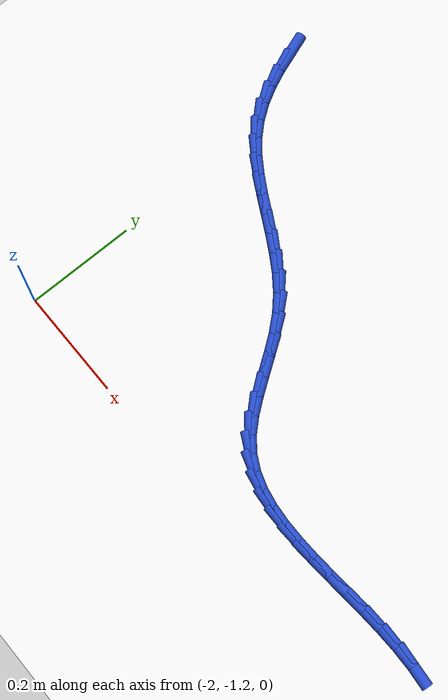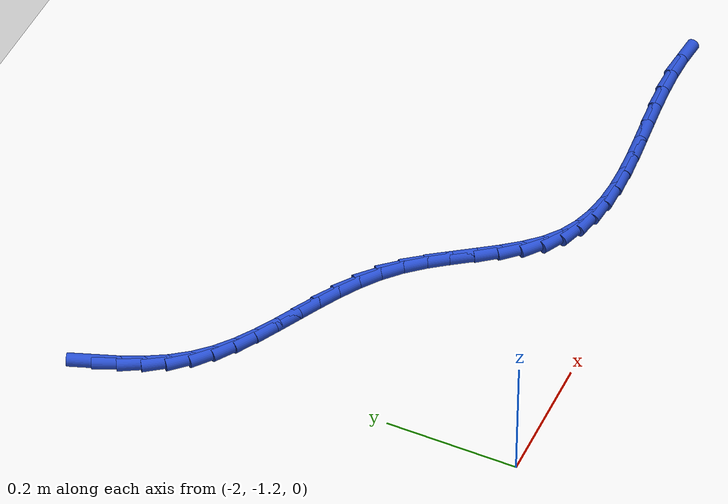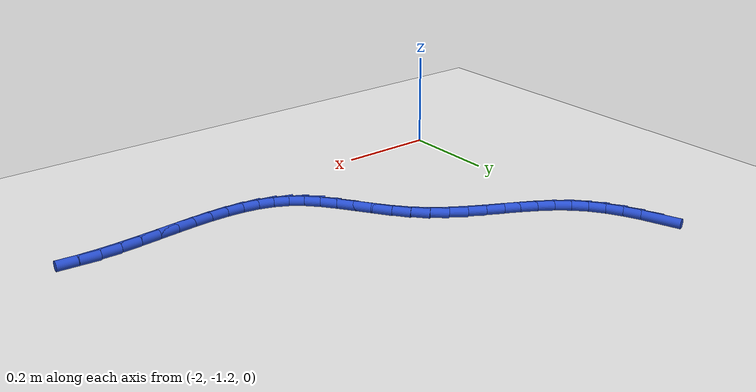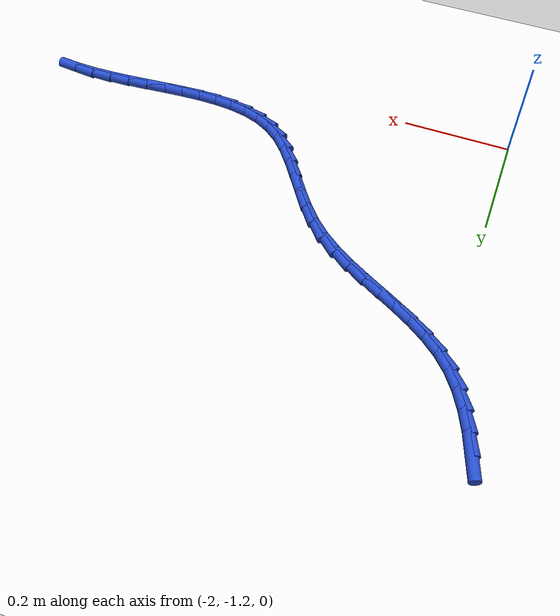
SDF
<sdf version="1.6">
 <world name="default">
  <model name="ground_plane">
   <static>1</static>
   <link name="link">
    <collision name="collision">
     <geometry><plane><normal>0 0 1</normal><size>100 100</size></plane></geometry>
     <surface><friction><ode><mu>100</mu><mu2>50</mu2></ode></friction></surface>
    </collision>
    <visual name="visual">
     <cast_shadows>0</cast_shadows>
     <geometry><plane><normal>0 0 1</normal><size>100 100</size></plane></geometry>
     <material>
      <script><uri>file://media/materials/scripts/gazebo.material</uri><name>Gazebo/WhiteGlow</name></script>
     </material>
    </visual>
   </link>
  </model>
  <model name="line">
   <link name="link_116">
    <pose>-2.071157767570418 -0.5710915443432558 0.01 0 1.57 -1.2275295567298745</pose>
    <collision name="collision">
     <geometry><cylinder><radius>0.01</radius><length>0.08</length></cylinder></geometry>
    </collision>
    <visual name="visual">
     <material>
      <script><name>Gazebo/Blue</name><uri>file://media/materials/scripts/gazebo.material</uri></script>
     </material>
     <geometry><cylinder><radius>0.01</radius><length>0.08</length></cylinder></geometry>
    </visual>
   </link>
   <link name="link_117">
    <pose>-2.058943376402617 -0.6052656378440056 0.01 0 1.57 -1.1555274619313</pose>
    <collision name="collision">
     <geometry><cylinder><radius>0.01</radius><length>0.08</length></cylinder></geometry>
    </collision>
    <visual name="visual">
     <material>
      <script><name>Gazebo/Blue</name><uri>file://media/materials/scripts/gazebo.material</uri></script>
     </material>
     <geometry><cylinder><radius>0.01</radius><length>0.08</length></cylinder></geometry>
    </visual>
   </link>
   <link name="link_118">
    <pose>-2.0446286189184812 -0.6377320446653065 0.01 0 1.57 -1.062980013516482</pose>
    <collision name="collision">
     <geometry><cylinder><radius>0.01</radius><length>0.08</length></cylinder></geometry>
    </collision>
    <visual name="visual">
     <material>
      <script><name>Gazebo/Blue</name><uri>file://media/materials/scripts/gazebo.material</uri></script>
     </material>
     <geometry><cylinder><radius>0.01</radius><length>0.08</length></cylinder></geometry>
    </visual>
   </link>
   <link name="link_119">
    <pose>-2.027783751425885 -0.6680016047810033 0.01 0 1.57 -0.9480981614589764</pose>
    <collision name="collision">
     <geometry><cylinder><radius>0.01</radius><length>0.08</length></cylinder></geometry>
    </collision>
    <visual name="visual">
     <material>
      <script><name>Gazebo/Blue</name><uri>file://media/materials/scripts/gazebo.material</uri></script>
     </material>
     <geometry><cylinder><radius>0.01</radius><length>0.08</length></cylinder></geometry>
    </visual>
   </link>
   <link name="link_120">
    <pose>-2.0079790302327 -0.6955851581649403 0.01 0 1.57 -0.8120194246019729</pose>
    <collision name="collision">
     <geometry><cylinder><radius>0.01</radius><length>0.08</length></cylinder></geometry>
    </collision>
    <visual name="visual">
     <material>
      <script><name>Gazebo/Blue</name><uri>file://media/materials/scripts/gazebo.material</uri></script>
     </material>
     <geometry><cylinder><radius>0.01</radius><length>0.08</length></cylinder></geometry>
    </visual>
   </link>
   <link name="link_121">
    <pose>-1.9848102376103818 -0.7200215605813411 0.01 0 1.57 -0.6823413383634463</pose>
    <collision name="collision">
     <geometry><cylinder><radius>0.01</radius><length>0.08</length></cylinder></geometry>
    </collision>
    <visual name="visual">
     <material>
      <script><name>Gazebo/Blue</name><uri>file://media/materials/scripts/gazebo.material</uri></script>
     </material>
     <geometry><cylinder><radius>0.01</radius><length>0.08</length></cylinder></geometry>
    </visual>
   </link>
   <link name="link_122">
    <pose>-1.9584277812407578 -0.7414583918955368 0.01 0 1.57 -0.5856528117831099</pose>
    <collision name="collision">
     <geometry><cylinder><radius>0.01</radius><length>0.08</length></cylinder></geometry>
    </collision>
    <visual name="visual">
     <material>
      <script><name>Gazebo/Blue</name><uri>file://media/materials/scripts/gazebo.material</uri></script>
     </material>
     <geometry><cylinder><radius>0.01</radius><length>0.08</length></cylinder></geometry>
    </visual>
   </link>
   <link name="link_123">
    <pose>-1.9295192325662616 -0.7606327911982484 0.01 0 1.57 -0.5219906045893203</pose>
    <collision name="collision">
     <geometry><cylinder><radius>0.01</radius><length>0.08</length></cylinder></geometry>
    </collision>
    <visual name="visual">
     <material>
      <script><name>Gazebo/Blue</name><uri>file://media/materials/scripts/gazebo.material</uri></script>
     </material>
     <geometry><cylinder><radius>0.01</radius><length>0.08</length></cylinder></geometry>
    </visual>
   </link>
   <link name="link_124">
    <pose>-1.8987941955425651 -0.7783060791657618 0.01 0 1.57 -0.4888921253878124</pose>
    <collision name="collision">
     <geometry><cylinder><radius>0.01</radius><length>0.08</length></cylinder></geometry>
    </collision>
    <visual name="visual">
     <material>
      <script><name>Gazebo/Blue</name><uri>file://media/materials/scripts/gazebo.material</uri></script>
     </material>
     <geometry><cylinder><radius>0.01</radius><length>0.08</length></cylinder></geometry>
    </visual>
   </link>
   <link name="link_125">
    <pose>-1.8669622741253422 -0.7952395764743625 0.01 0 1.57 -0.4842905669722895</pose>
    <collision name="collision">
     <geometry><cylinder><radius>0.01</radius><length>0.08</length></cylinder></geometry>
    </collision>
    <visual name="visual">
     <material>
      <script><name>Gazebo/Blue</name><uri>file://media/materials/scripts/gazebo.material</uri></script>
     </material>
     <geometry><cylinder><radius>0.01</radius><length>0.08</length></cylinder></geometry>
    </visual>
   </link>
   <link name="link_126">
    <pose>-1.8347330722702657 -0.8121946038003359 0.01 0 1.57 -0.5072488217176713</pose>
    <collision name="collision">
     <geometry><cylinder><radius>0.01</radius><length>0.08</length></cylinder></geometry>
    </collision>
    <visual name="visual">
     <material>
      <script><name>Gazebo/Blue</name><uri>file://media/materials/scripts/gazebo.material</uri></script>
     </material>
     <geometry><cylinder><radius>0.01</radius><length>0.08</length></cylinder></geometry>
    </visual>
   </link>
   <link name="link_127">
    <pose>-1.802816193933008 -0.8299324818199671 0.01 0 1.57 -0.5579637555865509</pose>
    <collision name="collision">
     <geometry><cylinder><radius>0.01</radius><length>0.08</length></cylinder></geometry>
    </collision>
    <visual name="visual">
     <material>
      <script><name>Gazebo/Blue</name><uri>file://media/materials/scripts/gazebo.material</uri></script>
     </material>
     <geometry><cylinder><radius>0.01</radius><length>0.08</length></cylinder></geometry>
    </visual>
   </link>
   <link name="link_128">
    <pose>-1.7719212430692415 -0.8492145312095418 0.01 0 1.57 -0.6372167917871737</pose>
    <collision name="collision">
     <geometry><cylinder><radius>0.01</radius><length>0.08</length></cylinder></geometry>
    </collision>
    <visual name="visual">
     <material>
      <script><name>Gazebo/Blue</name><uri>file://media/materials/scripts/gazebo.material</uri></script>
     </material>
     <geometry><cylinder><radius>0.01</radius><length>0.08</length></cylinder></geometry>
    </visual>
   </link>
   <link name="link_129">
    <pose>-1.742757823634639 -0.8708020726453453 0.01 0 1.57 -0.7450217796752965</pose>
    <collision name="collision">
     <geometry><cylinder><radius>0.01</radius><length>0.08</length></cylinder></geometry>
    </collision>
    <visual name="visual">
     <material>
      <script><name>Gazebo/Blue</name><uri>file://media/materials/scripts/gazebo.material</uri></script>
     </material>
     <geometry><cylinder><radius>0.01</radius><length>0.08</length></cylinder></geometry>
    </visual>
   </link>
   <link name="link_130">
    <pose>-1.716032332472969 -0.8954520790270347 0.01 0 1.57 -0.8580926453212601</pose>
    <collision name="collision">
     <geometry><cylinder><radius>0.01</radius><length>0.08</length></cylinder></geometry>
    </collision>
    <visual name="visual">
     <material>
      <script><name>Gazebo/Blue</name><uri>file://media/materials/scripts/gazebo.material</uri></script>
     </material>
     <geometry><cylinder><radius>0.01</radius><length>0.08</length></cylinder></geometry>
    </visual>
   </link>
   <link name="link_131">
    <pose>-1.6919799575131067 -0.9232827207527959 0.01 0 1.57 -0.9328873808417645</pose>
    <collision name="collision">
     <geometry><cylinder><radius>0.01</radius><length>0.08</length></cylinder></geometry>
    </collision>
    <visual name="visual">
     <material>
      <script><name>Gazebo/Blue</name><uri>file://media/materials/scripts/gazebo.material</uri></script>
     </material>
     <geometry><cylinder><radius>0.01</radius><length>0.08</length></cylinder></geometry>
    </visual>
   </link>
   <link name="link_132">
    <pose>-1.669872200617863 -0.95310573056614 0.01 0 1.57 -0.9671038197603524</pose>
    <collision name="collision">
     <geometry><cylinder><radius>0.01</radius><length>0.08</length></cylinder></geometry>
    </collision>
    <visual name="visual">
     <material>
      <script><name>Gazebo/Blue</name><uri>file://media/materials/scripts/gazebo.material</uri></script>
     </material>
     <geometry><cylinder><radius>0.01</radius><length>0.08</length></cylinder></geometry>
    </visual>
   </link>
   <link name="link_133">
    <pose>-1.6488627547085213 -0.9835731314848793 0.01 0 1.57 -0.961813903434438</pose>
    <collision name="collision">
     <geometry><cylinder><radius>0.01</radius><length>0.08</length></cylinder></geometry>
    </collision>
    <visual name="visual">
     <material>
      <script><name>Gazebo/Blue</name><uri>file://media/materials/scripts/gazebo.material</uri></script>
     </material>
     <geometry><cylinder><radius>0.01</radius><length>0.08</length></cylinder></geometry>
    </visual>
   </link>
   <link name="link_134">
    <pose>-1.628105312706362 -1.0133369465268243 0.01 0 1.57 -0.9143161352121585</pose>
    <collision name="collision">
     <geometry><cylinder><radius>0.01</radius><length>0.08</length></cylinder></geometry>
    </collision>
    <visual name="visual">
     <material>
      <script><name>Gazebo/Blue</name><uri>file://media/materials/scripts/gazebo.material</uri></script>
     </material>
     <geometry><cylinder><radius>0.01</radius><length>0.08</length></cylinder></geometry>
    </visual>
   </link>
   <link name="link_135">
    <pose>-1.6067535675326678 -1.0410491987097865 0.01 0 1.57 -0.8176628301317209</pose>
    <collision name="collision">
     <geometry><cylinder><radius>0.01</radius><length>0.08</length></cylinder></geometry>
    </collision>
    <visual name="visual">
     <material>
      <script><name>Gazebo/Blue</name><uri>file://media/materials/scripts/gazebo.material</uri></script>
     </material>
     <geometry><cylinder><radius>0.01</radius><length>0.08</length></cylinder></geometry>
    </visual>
   </link>
   <link name="link_136">
    <pose>-1.58396121210872 -1.0653619110515777 0.01 0 1.57 -0.6635015951906371</pose>
    <collision name="collision">
     <geometry><cylinder><radius>0.01</radius><length>0.08</length></cylinder></geometry>
    </collision>
    <visual name="visual">
     <material>
      <script><name>Gazebo/Blue</name><uri>file://media/materials/scripts/gazebo.material</uri></script>
     </material>
     <geometry><cylinder><radius>0.01</radius><length>0.08</length></cylinder></geometry>
    </visual>
   </link>
   <link name="link_137">
    <pose>-1.5588974438941055 -1.0849550348194998 0.01 0 1.57 -0.4807980690416712</pose>
    <collision name="collision">
     <geometry><cylinder><radius>0.01</radius><length>0.08</length></cylinder></geometry>
    </collision>
    <visual name="visual">
     <material>
      <script><name>Gazebo/Blue</name><uri>file://media/materials/scripts/gazebo.material</uri></script>
     </material>
     <geometry><cylinder><radius>0.01</radius><length>0.08</length></cylinder></geometry>
    </visual>
   </link>
   <link name="link_138">
    <pose>-1.531221624605635 -1.0993914517750594 0.01 0 1.57 -0.3177806625377076</pose>
    <collision name="collision">
     <geometry><cylinder><radius>0.01</radius><length>0.08</length></cylinder></geometry>
    </collision>
    <visual name="visual">
     <material>
      <script><name>Gazebo/Blue</name><uri>file://media/materials/scripts/gazebo.material</uri></script>
     </material>
     <geometry><cylinder><radius>0.01</radius><length>0.08</length></cylinder></geometry>
    </visual>
   </link>
   <link name="link_139">
    <pose>-1.5011714528628208 -1.1092757991317146 0.01 0 1.57 -0.18438915001687667</pose>
    <collision name="collision">
     <geometry><cylinder><radius>0.01</radius><length>0.08</length></cylinder></geometry>
    </collision>
    <visual name="visual">
     <material>
      <script><name>Gazebo/Blue</name><uri>file://media/materials/scripts/gazebo.material</uri></script>
     </material>
     <geometry><cylinder><radius>0.01</radius><length>0.08</length></cylinder></geometry>
    </visual>
   </link>
   <link name="link_140">
    <pose>-1.46901791775108 -1.11527268005736 0.01 0 1.57 -0.08144203949746116</pose>
    <collision name="collision">
     <geometry><cylinder><radius>0.01</radius><length>0.08</length></cylinder></geometry>
    </collision>
    <visual name="visual">
     <material>
      <script><name>Gazebo/Blue</name><uri>file://media/materials/scripts/gazebo.material</uri></script>
     </material>
     <geometry><cylinder><radius>0.01</radius><length>0.08</length></cylinder></geometry>
    </visual>
   </link>
   <link name="link_141">
    <pose>-1.4350320083558292 -1.1180466977198875 0.01 0 1.57 -0.00606951725386699</pose>
    <collision name="collision">
     <geometry><cylinder><radius>0.01</radius><length>0.08</length></cylinder></geometry>
    </collision>
    <visual name="visual">
     <material>
      <script><name>Gazebo/Blue</name><uri>file://media/materials/scripts/gazebo.material</uri></script>
     </material>
     <geometry><cylinder><radius>0.01</radius><length>0.08</length></cylinder></geometry>
    </visual>
   </link>
   <link name="link_142">
    <pose>-1.3994847137624848 -1.1182624552871905 0.01 0 1.57 0.04551698038154732</pose>
    <collision name="collision">
     <geometry><cylinder><radius>0.01</radius><length>0.08</length></cylinder></geometry>
    </collision>
    <visual name="visual">
     <material>
      <script><name>Gazebo/Blue</name><uri>file://media/materials/scripts/gazebo.material</uri></script>
     </material>
     <geometry><cylinder><radius>0.01</radius><length>0.08</length></cylinder></geometry>
    </visual>
   </link>
   <link name="link_143">
    <pose>-1.3626470230564636 -1.1165845559271617 0.01 0 1.57 0.07663714269000384</pose>
    <collision name="collision">
     <geometry><cylinder><radius>0.01</radius><length>0.08</length></cylinder></geometry>
    </collision>
    <visual name="visual">
     <material>
      <script><name>Gazebo/Blue</name><uri>file://media/materials/scripts/gazebo.material</uri></script>
     </material>
     <geometry><cylinder><radius>0.01</radius><length>0.08</length></cylinder></geometry>
    </visual>
   </link>
   <link name="link_144">
    <pose>-1.3247899253231836 -1.1136776028076947 0.01 0 1.57 0.08967870699352892</pose>
    <collision name="collision">
     <geometry><cylinder><radius>0.01</radius><length>0.08</length></cylinder></geometry>
    </collision>
    <visual name="visual">
     <material>
      <script><name>Gazebo/Blue</name><uri>file://media/materials/scripts/gazebo.material</uri></script>
     </material>
     <geometry><cylinder><radius>0.01</radius><length>0.08</length></cylinder></geometry>
    </visual>
   </link>
   <link name="link_145">
    <pose>-1.2861844096480604 -1.110206199096682 0.01 0 1.57 0.08604589379248462</pose>
    <collision name="collision">
     <geometry><cylinder><radius>0.01</radius><length>0.08</length></cylinder></geometry>
    </collision>
    <visual name="visual">
     <material>
      <script><name>Gazebo/Blue</name><uri>file://media/materials/scripts/gazebo.material</uri></script>
     </material>
     <geometry><cylinder><radius>0.01</radius><length>0.08</length></cylinder></geometry>
    </visual>
   </link>
   <link name="link_146">
    <pose>-1.247101465116511 -1.1068349479620172 0.01 0 1.57 0.06624388921209395</pose>
    <collision name="collision">
     <geometry><cylinder><radius>0.01</radius><length>0.08</length></cylinder></geometry>
    </collision>
    <visual name="visual">
     <material>
      <script><name>Gazebo/Blue</name><uri>file://media/materials/scripts/gazebo.material</uri></script>
     </material>
     <geometry><cylinder><radius>0.01</radius><length>0.08</length></cylinder></geometry>
    </visual>
   </link>
   <link name="link_147">
    <pose>-1.2078120808139532 -1.1042284525715929 0.01 0 1.57 0.030000974983220293</pose>
    <collision name="collision">
     <geometry><cylinder><radius>0.01</radius><length>0.08</length></cylinder></geometry>
    </collision>
    <visual name="visual">
     <material>
      <script><name>Gazebo/Blue</name><uri>file://media/materials/scripts/gazebo.material</uri></script>
     </material>
     <geometry><cylinder><radius>0.01</radius><length>0.08</length></cylinder></geometry>
    </visual>
   </link>
   <link name="link_148">
    <pose>-1.1685872458258029 -1.1030513160933018 0.01 0 1.57 -0.02357090211456271</pose>
    <collision name="collision">
     <geometry><cylinder><radius>0.01</radius><length>0.08</length></cylinder></geometry>
    </collision>
    <visual name="visual">
     <material>
      <script><name>Gazebo/Blue</name><uri>file://media/materials/scripts/gazebo.material</uri></script>
     </material>
     <geometry><cylinder><radius>0.01</radius><length>0.08</length></cylinder></geometry>
    </visual>
   </link>
   <link name="link_149">
    <pose>-1.1296979492374775 -1.1039681416950375 0.01 0 1.57 -0.09182499158201529</pose>
    <collision name="collision">
     <geometry><cylinder><radius>0.01</radius><length>0.08</length></cylinder></geometry>
    </collision>
    <visual name="visual">
     <material>
      <script><name>Gazebo/Blue</name><uri>file://media/materials/scripts/gazebo.material</uri></script>
     </material>
     <geometry><cylinder><radius>0.01</radius><length>0.08</length></cylinder></geometry>
    </visual>
   </link>
  </model>
 </world>
</sdf>
